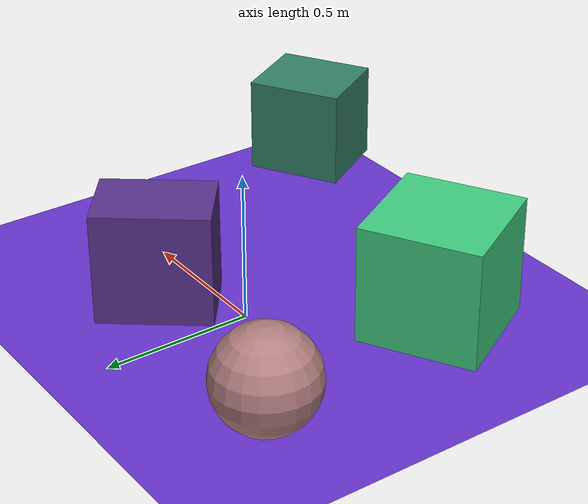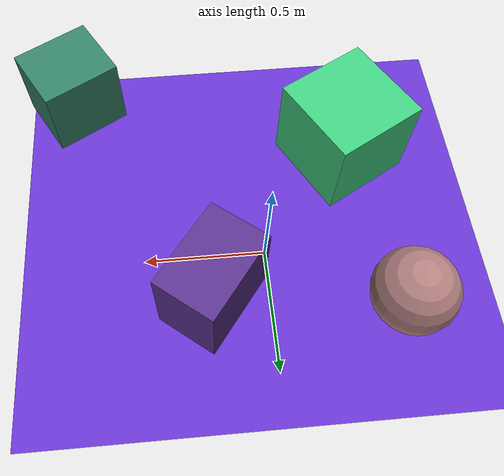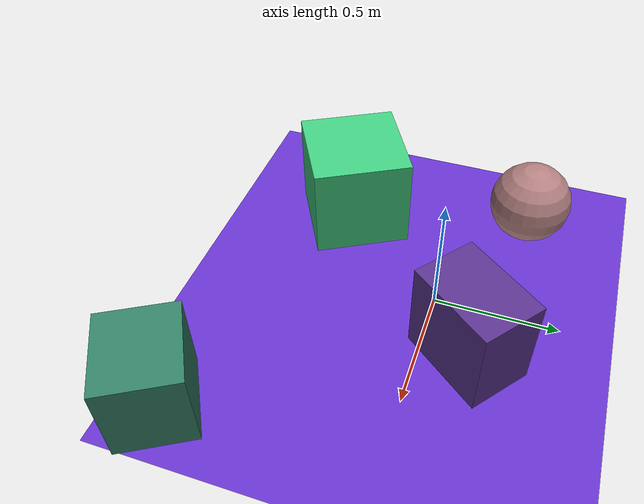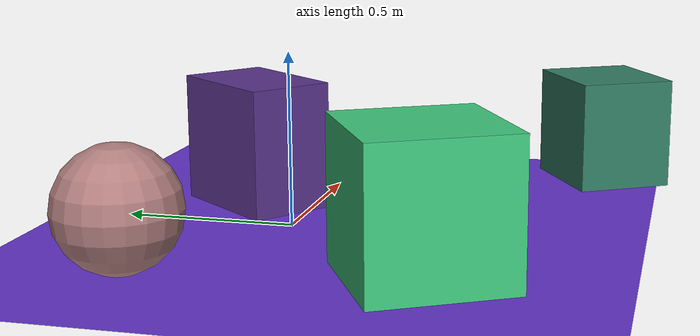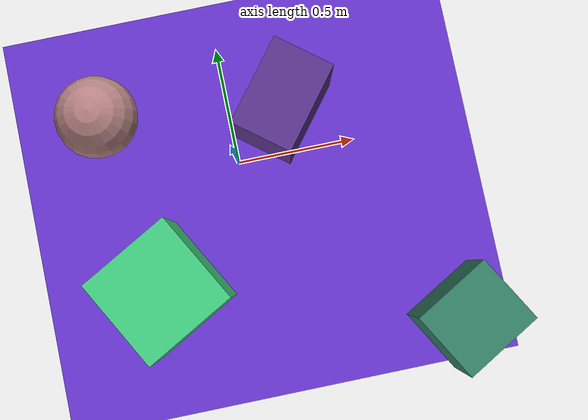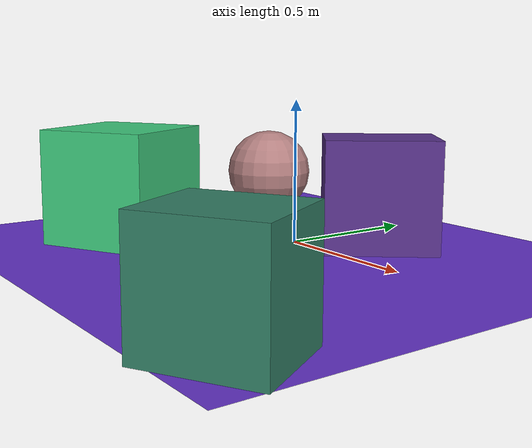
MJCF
<mujoco>
   <asset>
<texture type="skybox" builtin="gradient" rgb1="0.6 0.6 0.3" rgb2="0.7 0.4 0.4" width="256" height="256"/>
<texture name="checker_0" builtin="checker" rgb1="0.2 0.2 0.4" rgb2="0.2 0.8 0.4" width="200" height="200"/>
<texture name="gradient_1" builtin="gradient" rgb1="0.5 0.9 0.1" rgb2="0.9 0.1 0.9" width="200" height="200"/>
<texture name="checker_2" builtin="checker" rgb1="0.2 0.1 0.9" rgb2="0.5 0.3 0.2" width="200" height="200"/>
<texture name="checker_3" builtin="checker" rgb1="0.4 0.6 0.6" rgb2="0.1 1.0 0.4" width="200" height="200"/><material name="checker_0_mat" reflectance="0" texrepeat="4 4" texture="checker_0" texuniform="false" />
<material name="gradient_1_mat" reflectance="0" texture="gradient_1" texuniform="true"/>
<material name="checker_2_mat" reflectance="0" texrepeat="7 7" texture="checker_2" texuniform="false" />
<material name="checker_3_mat" reflectance="0" texrepeat="8 8" texture="checker_3" texuniform="false" />
   </asset>

   <worldbody>
      <light diffuse=".9 .9 .9" pos="0 0 3" dir="0 0 -1"/>
     <geom type="plane" size="1 1 0.1" rgba="0.4 0.2 0.8 1"/>
<geom type="box" pos="0.79 -0.82 0.17" size="0.17 0.15 0.17" material="checker_0_mat" euler="0 0 30" />
<geom type="sphere" pos="-0.53 0.28 0.17" size="0.17 0.17 0.17" material="gradient_1_mat" euler="0 0 32" />
<geom type="box" pos="0.23 0.18 0.19" size="0.19 0.13 0.19" material="checker_2_mat" euler="0 0 52" />
<geom type="box" pos="-0.39 -0.47 0.2" size="0.2 0.2 0.2" material="checker_3_mat" euler="0 0 29" /><camera euler="60 0 180" fovy="60" name="camera1" pos="-0.2 -1.5 1"></camera>   </worldbody>
</mujoco>
